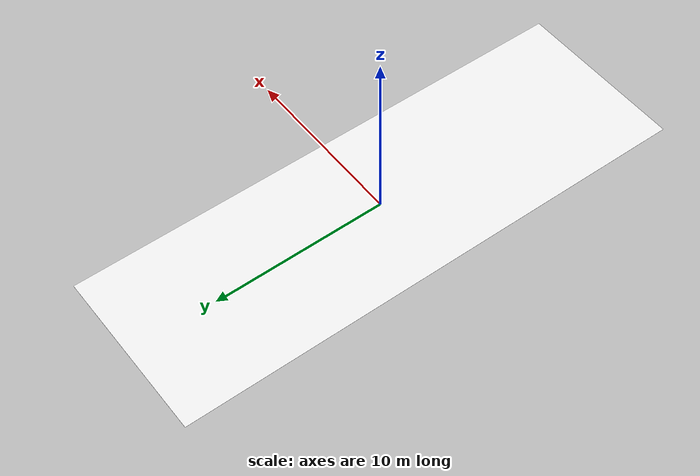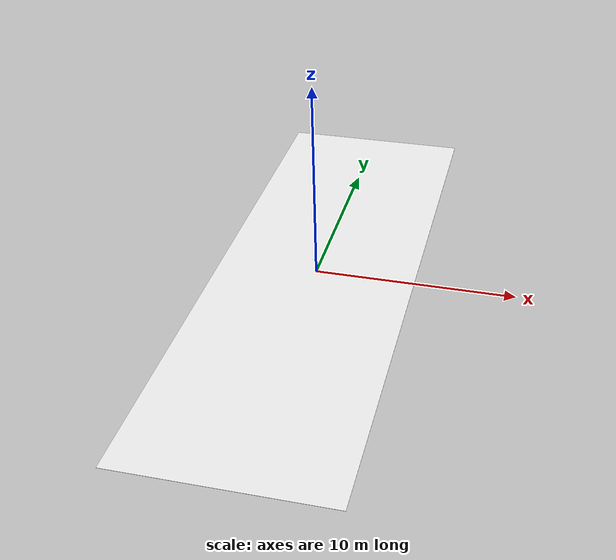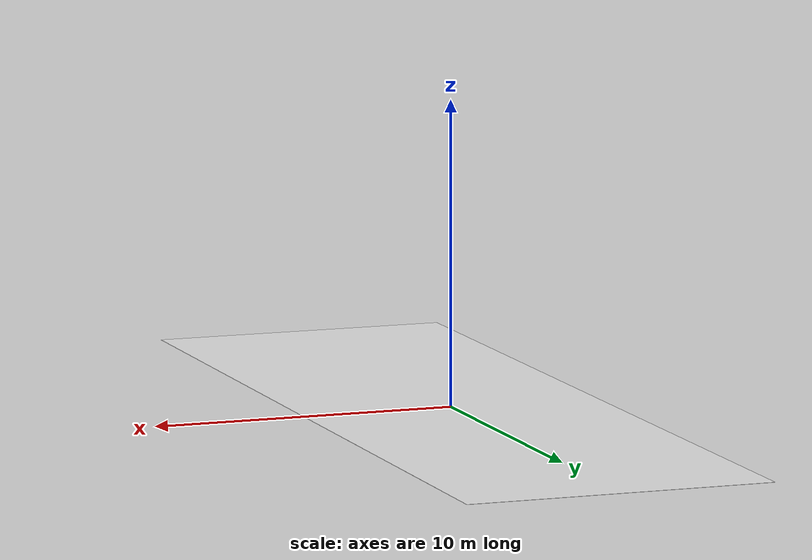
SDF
<?xml version='1.0'?>
<sdf version="1.6">
<model name="white_lane">
  <pose>0 0 0 0 0 0</pose>
    <link name="link">
      <visual name="visual">
        <geometry>
          <box>
            <size>10 30 0.01</size>
          </box>
        </geometry>
	<material>
          <script>
            <uri>model://white_lane/materials/white_lane.material</uri>
            <name>white_lane</name>
          </script>
        </material>
      </visual>
    </link>
    <static>1</static>
  </model>
</sdf>
